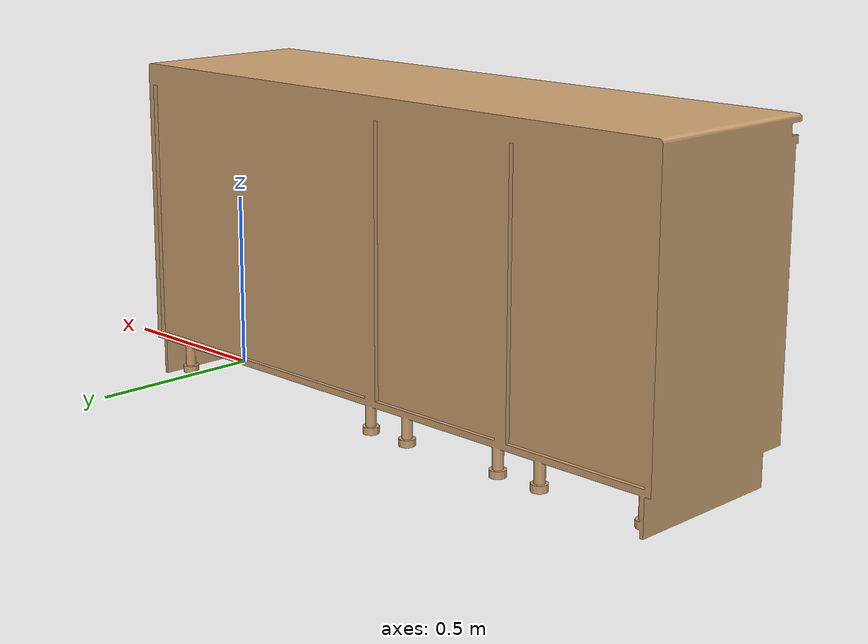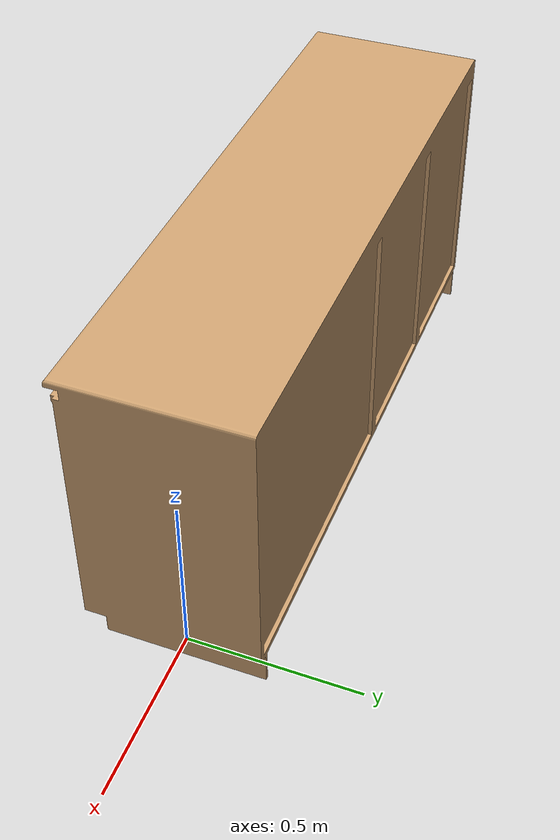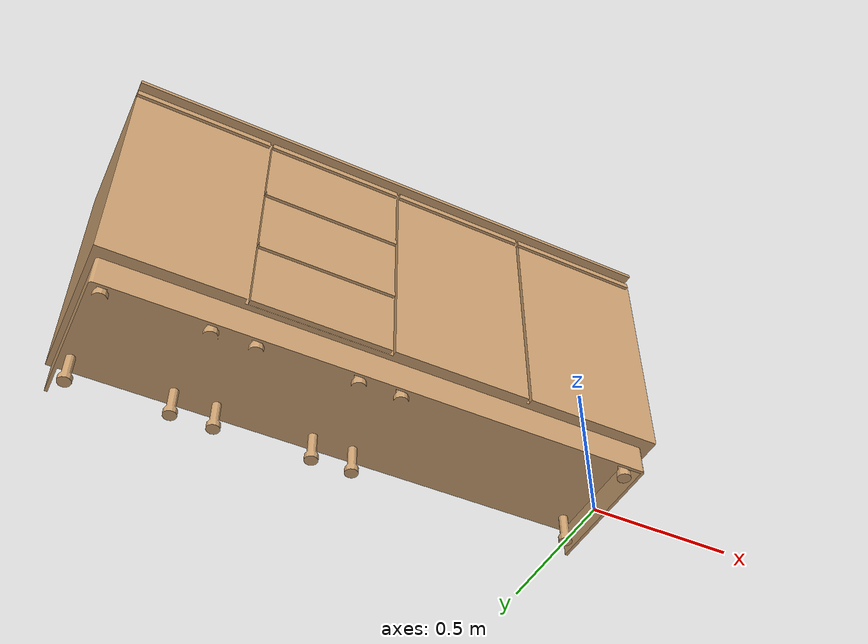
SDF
<?xml version='1.0'?>
<sdf version='1.6'>
  <model name='rai_kitchen_table'>
    <link name='link_0'>
      <pose frame=''>0 0 0 0 -0 0</pose>
      <visual name='visual'>
        <pose frame=''>0 0.25 0.4 1.57 -0 0</pose>
        <geometry>
          <mesh>
            <uri>model://rai_kitchen_table/meshes/rai_kitchen_table.STL</uri>
            <scale>1 1 1</scale>
          </mesh>
        </geometry>
        <material>
          <lighting>1</lighting>
          <script>
            <uri>file://media/materials/scripts/gazebo.material</uri>
            <name>Gazebo/Grey</name>
          </script>
          <ambient>0.8 0.63 0.44 1</ambient>
          <diffuse>0.8 0.63 0.44 1</diffuse>
          <specular>0.01 0.01 0.01 1</specular>
          <emissive>0 0 0 1</emissive>
          <shader type='vertex'>
            <normal_map>__default__</normal_map>
          </shader>
        </material>
        <cast_shadows>1</cast_shadows>
        <transparency>0</transparency>
      </visual>
      <collision name='collision'>
        <pose frame=''>-0.82 -0 0.46 0 -0 0</pose>
        <geometry>
          <box>
            <size>1.81 0.51 0.9</size>
          </box>
        </geometry>

      </collision>
    </link>
    <static>1</static>
    <allow_auto_disable>1</allow_auto_disable>
  </model>
</sdf>
